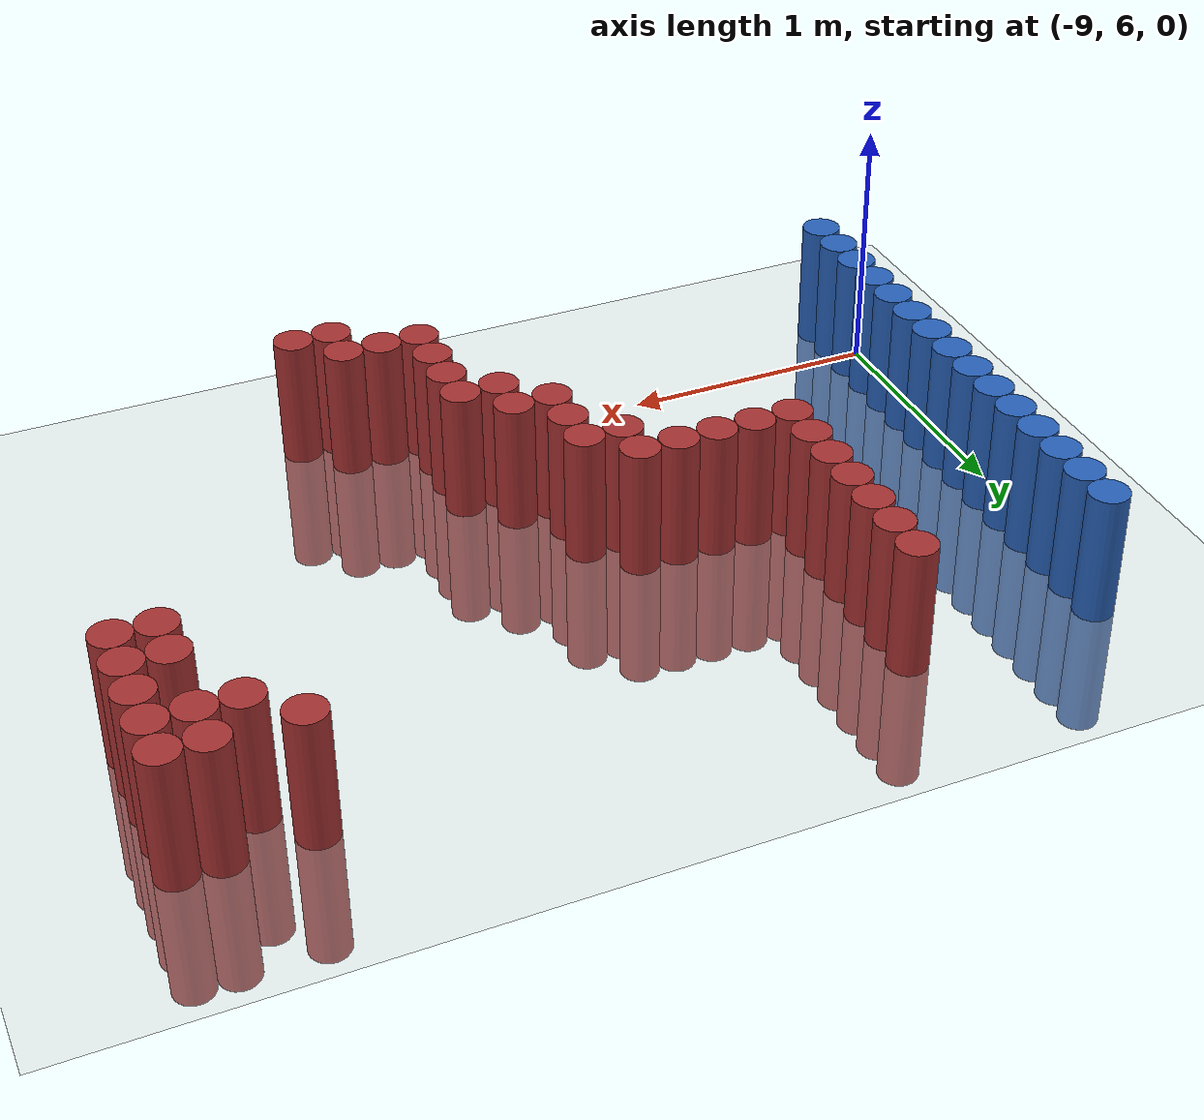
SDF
<sdf version="1.6">
 <world name="default">
  <model name="ground_plane">
   <static>1</static>
   <link name="link">
    <collision name="collision">
     <geometry><plane><normal>0 0 1</normal><size>100 100</size></plane></geometry>
     <surface><friction><ode><mu>100</mu><mu2>50</mu2></ode></friction></surface>
    </collision>
    <visual name="visual">
     <cast_shadows>0</cast_shadows>
     <geometry><plane><normal>0 0 1</normal><size>100 100</size></plane></geometry>
     <material>
      <script><uri>file://media/materials/scripts/gazebo.material</uri><name>Gazebo/Grey</name></script>
     </material>
    </visual>
   </link>
  </model>
  <model name="unit_cylinder_129">
   <static>1</static>
   <pose>-8.925000 5.775000 0.000000 0.000000 0.000000 0.000000</pose>
   <link name="link">
    <inertial>
     <mass>1</mass>
     <inertia><ixx>0.145833</ixx><ixy>0</ixy><ixz>0</ixz><iyy>0.145833</iyy><iyz>0</iyz><izz>0.125</izz></inertia>
    </inertial>
    <collision name="collision">
     <geometry><cylinder><radius>0.075000</radius><length>1</length></cylinder></geometry>
    </collision>
    <visual name="visual">
     <geometry><cylinder><radius>0.075000</radius><length>1</length></cylinder></geometry>
     <material>
      <ambient>0.152000 0.379000 0.720000 1</ambient>
      <diffuse>0.152000 0.379000 0.720000 1</diffuse>
     </material>
     <material>
      <script><name>Gazebo/Grey</name><uri>file://media/materials/scripts/gazebo.material</uri></script>
     </material>
    </visual>
   </link>
  </model>
  <model name="unit_cylinder_130">
   <static>1</static>
   <pose>-8.925000 5.925000 0.000000 0.000000 0.000000 0.000000</pose>
   <link name="link">
    <inertial>
     <mass>1</mass>
     <inertia><ixx>0.145833</ixx><ixy>0</ixy><ixz>0</ixz><iyy>0.145833</iyy><iyz>0</iyz><izz>0.125</izz></inertia>
    </inertial>
    <collision name="collision">
     <geometry><cylinder><radius>0.075000</radius><length>1</length></cylinder></geometry>
    </collision>
    <visual name="visual">
     <geometry><cylinder><radius>0.075000</radius><length>1</length></cylinder></geometry>
     <material>
      <ambient>0.152000 0.379000 0.720000 1</ambient>
      <diffuse>0.152000 0.379000 0.720000 1</diffuse>
     </material>
     <material>
      <script><name>Gazebo/Grey</name><uri>file://media/materials/scripts/gazebo.material</uri></script>
     </material>
    </visual>
   </link>
  </model>
  <model name="unit_cylinder_131">
   <static>1</static>
   <pose>-8.925000 6.075000 0.000000 0.000000 0.000000 0.000000</pose>
   <link name="link">
    <inertial>
     <mass>1</mass>
     <inertia><ixx>0.145833</ixx><ixy>0</ixy><ixz>0</ixz><iyy>0.145833</iyy><iyz>0</iyz><izz>0.125</izz></inertia>
    </inertial>
    <collision name="collision">
     <geometry><cylinder><radius>0.075000</radius><length>1</length></cylinder></geometry>
    </collision>
    <visual name="visual">
     <geometry><cylinder><radius>0.075000</radius><length>1</length></cylinder></geometry>
     <material>
      <ambient>0.152000 0.379000 0.720000 1</ambient>
      <diffuse>0.152000 0.379000 0.720000 1</diffuse>
     </material>
     <material>
      <script><name>Gazebo/Grey</name><uri>file://media/materials/scripts/gazebo.material</uri></script>
     </material>
    </visual>
   </link>
  </model>
  <model name="unit_cylinder_132">
   <static>1</static>
   <pose>-8.925000 6.225000 0.000000 0.000000 0.000000 0.000000</pose>
   <link name="link">
    <inertial>
     <mass>1</mass>
     <inertia><ixx>0.145833</ixx><ixy>0</ixy><ixz>0</ixz><iyy>0.145833</iyy><iyz>0</iyz><izz>0.125</izz></inertia>
    </inertial>
    <collision name="collision">
     <geometry><cylinder><radius>0.075000</radius><length>1</length></cylinder></geometry>
    </collision>
    <visual name="visual">
     <geometry><cylinder><radius>0.075000</radius><length>1</length></cylinder></geometry>
     <material>
      <ambient>0.152000 0.379000 0.720000 1</ambient>
      <diffuse>0.152000 0.379000 0.720000 1</diffuse>
     </material>
     <material>
      <script><name>Gazebo/Grey</name><uri>file://media/materials/scripts/gazebo.material</uri></script>
     </material>
    </visual>
   </link>
  </model>
  <model name="unit_cylinder_133">
   <static>1</static>
   <pose>-8.925000 6.375000 0.000000 0.000000 0.000000 0.000000</pose>
   <link name="link">
    <inertial>
     <mass>1</mass>
     <inertia><ixx>0.145833</ixx><ixy>0</ixy><ixz>0</ixz><iyy>0.145833</iyy><iyz>0</iyz><izz>0.125</izz></inertia>
    </inertial>
    <collision name="collision">
     <geometry><cylinder><radius>0.075000</radius><length>1</length></cylinder></geometry>
    </collision>
    <visual name="visual">
     <geometry><cylinder><radius>0.075000</radius><length>1</length></cylinder></geometry>
     <material>
      <ambient>0.152000 0.379000 0.720000 1</ambient>
      <diffuse>0.152000 0.379000 0.720000 1</diffuse>
     </material>
     <material>
      <script><name>Gazebo/Grey</name><uri>file://media/materials/scripts/gazebo.material</uri></script>
     </material>
    </visual>
   </link>
  </model>
  <model name="unit_cylinder_134">
   <static>1</static>
   <pose>-8.925000 6.525000 0.000000 0.000000 0.000000 0.000000</pose>
   <link name="link">
    <inertial>
     <mass>1</mass>
     <inertia><ixx>0.145833</ixx><ixy>0</ixy><ixz>0</ixz><iyy>0.145833</iyy><iyz>0</iyz><izz>0.125</izz></inertia>
    </inertial>
    <collision name="collision">
     <geometry><cylinder><radius>0.075000</radius><length>1</length></cylinder></geometry>
    </collision>
    <visual name="visual">
     <geometry><cylinder><radius>0.075000</radius><length>1</length></cylinder></geometry>
     <material>
      <ambient>0.152000 0.379000 0.720000 1</ambient>
      <diffuse>0.152000 0.379000 0.720000 1</diffuse>
     </material>
     <material>
      <script><name>Gazebo/Grey</name><uri>file://media/materials/scripts/gazebo.material</uri></script>
     </material>
    </visual>
   </link>
  </model>
  <model name="unit_cylinder_135">
   <static>1</static>
   <pose>-8.925000 6.675000 0.000000 0.000000 0.000000 0.000000</pose>
   <link name="link">
    <inertial>
     <mass>1</mass>
     <inertia><ixx>0.145833</ixx><ixy>0</ixy><ixz>0</ixz><iyy>0.145833</iyy><iyz>0</iyz><izz>0.125</izz></inertia>
    </inertial>
    <collision name="collision">
     <geometry><cylinder><radius>0.075000</radius><length>1</length></cylinder></geometry>
    </collision>
    <visual name="visual">
     <geometry><cylinder><radius>0.075000</radius><length>1</length></cylinder></geometry>
     <material>
      <ambient>0.152000 0.379000 0.720000 1</ambient>
      <diffuse>0.152000 0.379000 0.720000 1</diffuse>
     </material>
     <material>
      <script><name>Gazebo/Grey</name><uri>file://media/materials/scripts/gazebo.material</uri></script>
     </material>
    </visual>
   </link>
  </model>
  <model name="unit_cylinder_136">
   <static>1</static>
   <pose>-8.925000 6.825000 0.000000 0.000000 0.000000 0.000000</pose>
   <link name="link">
    <inertial>
     <mass>1</mass>
     <inertia><ixx>0.145833</ixx><ixy>0</ixy><ixz>0</ixz><iyy>0.145833</iyy><iyz>0</iyz><izz>0.125</izz></inertia>
    </inertial>
    <collision name="collision">
     <geometry><cylinder><radius>0.075000</radius><length>1</length></cylinder></geometry>
    </collision>
    <visual name="visual">
     <geometry><cylinder><radius>0.075000</radius><length>1</length></cylinder></geometry>
     <material>
      <ambient>0.152000 0.379000 0.720000 1</ambient>
      <diffuse>0.152000 0.379000 0.720000 1</diffuse>
     </material>
     <material>
      <script><name>Gazebo/Grey</name><uri>file://media/materials/scripts/gazebo.material</uri></script>
     </material>
    </visual>
   </link>
  </model>
  <model name="unit_cylinder_137">
   <static>1</static>
   <pose>-8.925000 6.975000 0.000000 0.000000 0.000000 0.000000</pose>
   <link name="link">
    <inertial>
     <mass>1</mass>
     <inertia><ixx>0.145833</ixx><ixy>0</ixy><ixz>0</ixz><iyy>0.145833</iyy><iyz>0</iyz><izz>0.125</izz></inertia>
    </inertial>
    <collision name="collision">
     <geometry><cylinder><radius>0.075000</radius><length>1</length></cylinder></geometry>
    </collision>
    <visual name="visual">
     <geometry><cylinder><radius>0.075000</radius><length>1</length></cylinder></geometry>
     <material>
      <ambient>0.152000 0.379000 0.720000 1</ambient>
      <diffuse>0.152000 0.379000 0.720000 1</diffuse>
     </material>
     <material>
      <script><name>Gazebo/Grey</name><uri>file://media/materials/scripts/gazebo.material</uri></script>
     </material>
    </visual>
   </link>
  </model>
  <model name="unit_cylinder_138">
   <static>1</static>
   <pose>-8.925000 7.125000 0.000000 0.000000 0.000000 0.000000</pose>
   <link name="link">
    <inertial>
     <mass>1</mass>
     <inertia><ixx>0.145833</ixx><ixy>0</ixy><ixz>0</ixz><iyy>0.145833</iyy><iyz>0</iyz><izz>0.125</izz></inertia>
    </inertial>
    <collision name="collision">
     <geometry><cylinder><radius>0.075000</radius><length>1</length></cylinder></geometry>
    </collision>
    <visual name="visual">
     <geometry><cylinder><radius>0.075000</radius><length>1</length></cylinder></geometry>
     <material>
      <ambient>0.152000 0.379000 0.720000 1</ambient>
      <diffuse>0.152000 0.379000 0.720000 1</diffuse>
     </material>
     <material>
      <script><name>Gazebo/Grey</name><uri>file://media/materials/scripts/gazebo.material</uri></script>
     </material>
    </visual>
   </link>
  </model>
  <model name="unit_cylinder_139">
   <static>1</static>
   <pose>-8.925000 7.275000 0.000000 0.000000 0.000000 0.000000</pose>
   <link name="link">
    <inertial>
     <mass>1</mass>
     <inertia><ixx>0.145833</ixx><ixy>0</ixy><ixz>0</ixz><iyy>0.145833</iyy><iyz>0</iyz><izz>0.125</izz></inertia>
    </inertial>
    <collision name="collision">
     <geometry><cylinder><radius>0.075000</radius><length>1</length></cylinder></geometry>
    </collision>
    <visual name="visual">
     <geometry><cylinder><radius>0.075000</radius><length>1</length></cylinder></geometry>
     <material>
      <ambient>0.152000 0.379000 0.720000 1</ambient>
      <diffuse>0.152000 0.379000 0.720000 1</diffuse>
     </material>
     <material>
      <script><name>Gazebo/Grey</name><uri>file://media/materials/scripts/gazebo.material</uri></script>
     </material>
    </visual>
   </link>
  </model>
  <model name="unit_cylinder_140">
   <static>1</static>
   <pose>-8.925000 7.425000 0.000000 0.000000 0.000000 0.000000</pose>
   <link name="link">
    <inertial>
     <mass>1</mass>
     <inertia><ixx>0.145833</ixx><ixy>0</ixy><ixz>0</ixz><iyy>0.145833</iyy><iyz>0</iyz><izz>0.125</izz></inertia>
    </inertial>
    <collision name="collision">
     <geometry><cylinder><radius>0.075000</radius><length>1</length></cylinder></geometry>
    </collision>
    <visual name="visual">
     <geometry><cylinder><radius>0.075000</radius><length>1</length></cylinder></geometry>
     <material>
      <ambient>0.152000 0.379000 0.720000 1</ambient>
      <diffuse>0.152000 0.379000 0.720000 1</diffuse>
     </material>
     <material>
      <script><name>Gazebo/Grey</name><uri>file://media/materials/scripts/gazebo.material</uri></script>
     </material>
    </visual>
   </link>
  </model>
  <model name="unit_cylinder_141">
   <static>1</static>
   <pose>-8.925000 7.575000 0.000000 0.000000 0.000000 0.000000</pose>
   <link name="link">
    <inertial>
     <mass>1</mass>
     <inertia><ixx>0.145833</ixx><ixy>0</ixy><ixz>0</ixz><iyy>0.145833</iyy><iyz>0</iyz><izz>0.125</izz></inertia>
    </inertial>
    <collision name="collision">
     <geometry><cylinder><radius>0.075000</radius><length>1</length></cylinder></geometry>
    </collision>
    <visual name="visual">
     <geometry><cylinder><radius>0.075000</radius><length>1</length></cylinder></geometry>
     <material>
      <ambient>0.152000 0.379000 0.720000 1</ambient>
      <diffuse>0.152000 0.379000 0.720000 1</diffuse>
     </material>
     <material>
      <script><name>Gazebo/Grey</name><uri>file://media/materials/scripts/gazebo.material</uri></script>
     </material>
    </visual>
   </link>
  </model>
  <model name="unit_cylinder_142">
   <static>1</static>
   <pose>-8.925000 7.725000 0.000000 0.000000 0.000000 0.000000</pose>
   <link name="link">
    <inertial>
     <mass>1</mass>
     <inertia><ixx>0.145833</ixx><ixy>0</ixy><ixz>0</ixz><iyy>0.145833</iyy><iyz>0</iyz><izz>0.125</izz></inertia>
    </inertial>
    <collision name="collision">
     <geometry><cylinder><radius>0.075000</radius><length>1</length></cylinder></geometry>
    </collision>
    <visual name="visual">
     <geometry><cylinder><radius>0.075000</radius><length>1</length></cylinder></geometry>
     <material>
      <ambient>0.152000 0.379000 0.720000 1</ambient>
      <diffuse>0.152000 0.379000 0.720000 1</diffuse>
     </material>
     <material>
      <script><name>Gazebo/Grey</name><uri>file://media/materials/scripts/gazebo.material</uri></script>
     </material>
    </visual>
   </link>
  </model>
  <model name="unit_cylinder_143">
   <static>1</static>
   <pose>-8.925000 7.875000 0.000000 0.000000 0.000000 0.000000</pose>
   <link name="link">
    <inertial>
     <mass>1</mass>
     <inertia><ixx>0.145833</ixx><ixy>0</ixy><ixz>0</ixz><iyy>0.145833</iyy><iyz>0</iyz><izz>0.125</izz></inertia>
    </inertial>
    <collision name="collision">
     <geometry><cylinder><radius>0.075000</radius><length>1</length></cylinder></geometry>
    </collision>
    <visual name="visual">
     <geometry><cylinder><radius>0.075000</radius><length>1</length></cylinder></geometry>
     <material>
      <ambient>0.152000 0.379000 0.720000 1</ambient>
      <diffuse>0.152000 0.379000 0.720000 1</diffuse>
     </material>
     <material>
      <script><name>Gazebo/Grey</name><uri>file://media/materials/scripts/gazebo.material</uri></script>
     </material>
    </visual>
   </link>
  </model>
  <model name="unit_cylinder_164">
   <static>1</static>
   <pose>-8.175000 6.975000 0.000000 0.000000 0.000000 0.000000</pose>
   <link name="link">
    <inertial>
     <mass>1</mass>
     <inertia><ixx>0.145833</ixx><ixy>0</ixy><ixz>0</ixz><iyy>0.145833</iyy><iyz>0</iyz><izz>0.125</izz></inertia>
    </inertial>
    <collision name="collision">
     <geometry><cylinder><radius>0.075000</radius><length>1</length></cylinder></geometry>
    </collision>
    <visual name="visual">
     <geometry><cylinder><radius>0.075000</radius><length>1</length></cylinder></geometry>
     <material>
      <ambient>0.648000 0.192000 0.192000 1</ambient>
      <diffuse>0.648000 0.192000 0.192000 1</diffuse>
     </material>
     <material>
      <script><name>Gazebo/Grey</name><uri>file://media/materials/scripts/gazebo.material</uri></script>
     </material>
    </visual>
   </link>
  </model>
  <model name="unit_cylinder_165">
   <static>1</static>
   <pose>-8.175000 7.125000 0.000000 0.000000 0.000000 0.000000</pose>
   <link name="link">
    <inertial>
     <mass>1</mass>
     <inertia><ixx>0.145833</ixx><ixy>0</ixy><ixz>0</ixz><iyy>0.145833</iyy><iyz>0</iyz><izz>0.125</izz></inertia>
    </inertial>
    <collision name="collision">
     <geometry><cylinder><radius>0.075000</radius><length>1</length></cylinder></geometry>
    </collision>
    <visual name="visual">
     <geometry><cylinder><radius>0.075000</radius><length>1</length></cylinder></geometry>
     <material>
      <ambient>0.648000 0.192000 0.192000 1</ambient>
      <diffuse>0.648000 0.192000 0.192000 1</diffuse>
     </material>
     <material>
      <script><name>Gazebo/Grey</name><uri>file://media/materials/scripts/gazebo.material</uri></script>
     </material>
    </visual>
   </link>
  </model>
  <model name="unit_cylinder_166">
   <static>1</static>
   <pose>-8.175000 7.275000 0.000000 0.000000 0.000000 0.000000</pose>
   <link name="link">
    <inertial>
     <mass>1</mass>
     <inertia><ixx>0.145833</ixx><ixy>0</ixy><ixz>0</ixz><iyy>0.145833</iyy><iyz>0</iyz><izz>0.125</izz></inertia>
    </inertial>
    <collision name="collision">
     <geometry><cylinder><radius>0.075000</radius><length>1</length></cylinder></geometry>
    </collision>
    <visual name="visual">
     <geometry><cylinder><radius>0.075000</radius><length>1</length></cylinder></geometry>
     <material>
      <ambient>0.648000 0.192000 0.192000 1</ambient>
      <diffuse>0.648000 0.192000 0.192000 1</diffuse>
     </material>
     <material>
      <script><name>Gazebo/Grey</name><uri>file://media/materials/scripts/gazebo.material</uri></script>
     </material>
    </visual>
   </link>
  </model>
  <model name="unit_cylinder_167">
   <static>1</static>
   <pose>-8.175000 7.425000 0.000000 0.000000 0.000000 0.000000</pose>
   <link name="link">
    <inertial>
     <mass>1</mass>
     <inertia><ixx>0.145833</ixx><ixy>0</ixy><ixz>0</ixz><iyy>0.145833</iyy><iyz>0</iyz><izz>0.125</izz></inertia>
    </inertial>
    <collision name="collision">
     <geometry><cylinder><radius>0.075000</radius><length>1</length></cylinder></geometry>
    </collision>
    <visual name="visual">
     <geometry><cylinder><radius>0.075000</radius><length>1</length></cylinder></geometry>
     <material>
      <ambient>0.648000 0.192000 0.192000 1</ambient>
      <diffuse>0.648000 0.192000 0.192000 1</diffuse>
     </material>
     <material>
      <script><name>Gazebo/Grey</name><uri>file://media/materials/scripts/gazebo.material</uri></script>
     </material>
    </visual>
   </link>
  </model>
  <model name="unit_cylinder_168">
   <static>1</static>
   <pose>-8.175000 7.575000 0.000000 0.000000 0.000000 0.000000</pose>
   <link name="link">
    <inertial>
     <mass>1</mass>
     <inertia><ixx>0.145833</ixx><ixy>0</ixy><ixz>0</ixz><iyy>0.145833</iyy><iyz>0</iyz><izz>0.125</izz></inertia>
    </inertial>
    <collision name="collision">
     <geometry><cylinder><radius>0.075000</radius><length>1</length></cylinder></geometry>
    </collision>
    <visual name="visual">
     <geometry><cylinder><radius>0.075000</radius><length>1</length></cylinder></geometry>
     <material>
      <ambient>0.648000 0.192000 0.192000 1</ambient>
      <diffuse>0.648000 0.192000 0.192000 1</diffuse>
     </material>
     <material>
      <script><name>Gazebo/Grey</name><uri>file://media/materials/scripts/gazebo.material</uri></script>
     </material>
    </visual>
   </link>
  </model>
  <model name="unit_cylinder_169">
   <static>1</static>
   <pose>-8.175000 7.725000 0.000000 0.000000 0.000000 0.000000</pose>
   <link name="link">
    <inertial>
     <mass>1</mass>
     <inertia><ixx>0.145833</ixx><ixy>0</ixy><ixz>0</ixz><iyy>0.145833</iyy><iyz>0</iyz><izz>0.125</izz></inertia>
    </inertial>
    <collision name="collision">
     <geometry><cylinder><radius>0.075000</radius><length>1</length></cylinder></geometry>
    </collision>
    <visual name="visual">
     <geometry><cylinder><radius>0.075000</radius><length>1</length></cylinder></geometry>
     <material>
      <ambient>0.648000 0.192000 0.192000 1</ambient>
      <diffuse>0.648000 0.192000 0.192000 1</diffuse>
     </material>
     <material>
      <script><name>Gazebo/Grey</name><uri>file://media/materials/scripts/gazebo.material</uri></script>
     </material>
    </visual>
   </link>
  </model>
  <model name="unit_cylinder_170">
   <static>1</static>
   <pose>-8.175000 7.875000 0.000000 0.000000 0.000000 0.000000</pose>
   <link name="link">
    <inertial>
     <mass>1</mass>
     <inertia><ixx>0.145833</ixx><ixy>0</ixy><ixz>0</ixz><iyy>0.145833</iyy><iyz>0</iyz><izz>0.125</izz></inertia>
    </inertial>
    <collision name="collision">
     <geometry><cylinder><radius>0.075000</radius><length>1</length></cylinder></geometry>
    </collision>
    <visual name="visual">
     <geometry><cylinder><radius>0.075000</radius><length>1</length></cylinder></geometry>
     <material>
      <ambient>0.648000 0.192000 0.192000 1</ambient>
      <diffuse>0.648000 0.192000 0.192000 1</diffuse>
     </material>
     <material>
      <script><name>Gazebo/Grey</name><uri>file://media/materials/scripts/gazebo.material</uri></script>
     </material>
    </visual>
   </link>
  </model>
  <model name="unit_cylinder_183">
   <static>1</static>
   <pose>-8.025000 6.975000 0.000000 0.000000 0.000000 0.000000</pose>
   <link name="link">
    <inertial>
     <mass>1</mass>
     <inertia><ixx>0.145833</ixx><ixy>0</ixy><ixz>0</ixz><iyy>0.145833</iyy><iyz>0</iyz><izz>0.125</izz></inertia>
    </inertial>
    <collision name="collision">
     <geometry><cylinder><radius>0.075000</radius><length>1</length></cylinder></geometry>
    </collision>
    <visual name="visual">
     <geometry><cylinder><radius>0.075000</radius><length>1</length></cylinder></geometry>
     <material>
      <ambient>0.648000 0.192000 0.192000 1</ambient>
      <diffuse>0.648000 0.192000 0.192000 1</diffuse>
     </material>
     <material>
      <script><name>Gazebo/Grey</name><uri>file://media/materials/scripts/gazebo.material</uri></script>
     </material>
    </visual>
   </link>
  </model>
  <model name="unit_cylinder_185">
   <static>1</static>
   <pose>-7.875000 6.975000 0.000000 0.000000 0.000000 0.000000</pose>
   <link name="link">
    <inertial>
     <mass>1</mass>
     <inertia><ixx>0.145833</ixx><ixy>0</ixy><ixz>0</ixz><iyy>0.145833</iyy><iyz>0</iyz><izz>0.125</izz></inertia>
    </inertial>
    <collision name="collision">
     <geometry><cylinder><radius>0.075000</radius><length>1</length></cylinder></geometry>
    </collision>
    <visual name="visual">
     <geometry><cylinder><radius>0.075000</radius><length>1</length></cylinder></geometry>
     <material>
      <ambient>0.648000 0.192000 0.192000 1</ambient>
      <diffuse>0.648000 0.192000 0.192000 1</diffuse>
     </material>
     <material>
      <script><name>Gazebo/Grey</name><uri>file://media/materials/scripts/gazebo.material</uri></script>
     </material>
    </visual>
   </link>
  </model>
  <model name="unit_cylinder_187">
   <static>1</static>
   <pose>-7.725000 6.975000 0.000000 0.000000 0.000000 0.000000</pose>
   <link name="link">
    <inertial>
     <mass>1</mass>
     <inertia><ixx>0.145833</ixx><ixy>0</ixy><ixz>0</ixz><iyy>0.145833</iyy><iyz>0</iyz><izz>0.125</izz></inertia>
    </inertial>
    <collision name="collision">
     <geometry><cylinder><radius>0.075000</radius><length>1</length></cylinder></geometry>
    </collision>
    <visual name="visual">
     <geometry><cylinder><radius>0.075000</radius><length>1</length></cylinder></geometry>
     <material>
      <ambient>0.648000 0.192000 0.192000 1</ambient>
      <diffuse>0.648000 0.192000 0.192000 1</diffuse>
     </material>
     <material>
      <script><name>Gazebo/Grey</name><uri>file://media/materials/scripts/gazebo.material</uri></script>
     </material>
    </visual>
   </link>
  </model>
  <model name="unit_cylinder_189">
   <static>1</static>
   <pose>-7.575000 6.825000 0.000000 0.000000 0.000000 0.000000</pose>
   <link name="link">
    <inertial>
     <mass>1</mass>
     <inertia><ixx>0.145833</ixx><ixy>0</ixy><ixz>0</ixz><iyy>0.145833</iyy><iyz>0</iyz><izz>0.125</izz></inertia>
    </inertial>
    <collision name="collision">
     <geometry><cylinder><radius>0.075000</radius><length>1</length></cylinder></geometry>
    </collision>
    <visual name="visual">
     <geometry><cylinder><radius>0.075000</radius><length>1</length></cylinder></geometry>
     <material>
      <ambient>0.648000 0.192000 0.192000 1</ambient>
      <diffuse>0.648000 0.192000 0.192000 1</diffuse>
     </material>
     <material>
      <script><name>Gazebo/Grey</name><uri>file://media/materials/scripts/gazebo.material</uri></script>
     </material>
    </visual>
   </link>
  </model>
  <model name="unit_cylinder_190">
   <static>1</static>
   <pose>-7.575000 6.975000 0.000000 0.000000 0.000000 0.000000</pose>
   <link name="link">
    <inertial>
     <mass>1</mass>
     <inertia><ixx>0.145833</ixx><ixy>0</ixy><ixz>0</ixz><iyy>0.145833</iyy><iyz>0</iyz><izz>0.125</izz></inertia>
    </inertial>
    <collision name="collision">
     <geometry><cylinder><radius>0.075000</radius><length>1</length></cylinder></geometry>
    </collision>
    <visual name="visual">
     <geometry><cylinder><radius>0.075000</radius><length>1</length></cylinder></geometry>
     <material>
      <ambient>0.648000 0.192000 0.192000 1</ambient>
      <diffuse>0.648000 0.192000 0.192000 1</diffuse>
     </material>
     <material>
      <script><name>Gazebo/Grey</name><uri>file://media/materials/scripts/gazebo.material</uri></script>
     </material>
    </visual>
   </link>
  </model>
  <model name="unit_cylinder_192">
   <static>1</static>
   <pose>-7.425000 6.525000 0.000000 0.000000 0.000000 0.000000</pose>
   <link name="link">
    <inertial>
     <mass>1</mass>
     <inertia><ixx>0.145833</ixx><ixy>0</ixy><ixz>0</ixz><iyy>0.145833</iyy><iyz>0</iyz><izz>0.125</izz></inertia>
    </inertial>
    <collision name="collision">
     <geometry><cylinder><radius>0.075000</radius><length>1</length></cylinder></geometry>
    </collision>
    <visual name="visual">
     <geometry><cylinder><radius>0.075000</radius><length>1</length></cylinder></geometry>
     <material>
      <ambient>0.648000 0.192000 0.192000 1</ambient>
      <diffuse>0.648000 0.192000 0.192000 1</diffuse>
     </material>
     <material>
      <script><name>Gazebo/Grey</name><uri>file://media/materials/scripts/gazebo.material</uri></script>
     </material>
    </visual>
   </link>
  </model>
  <model name="unit_cylinder_193">
   <static>1</static>
   <pose>-7.425000 6.675000 0.000000 0.000000 0.000000 0.000000</pose>
   <link name="link">
    <inertial>
     <mass>1</mass>
     <inertia><ixx>0.145833</ixx><ixy>0</ixy><ixz>0</ixz><iyy>0.145833</iyy><iyz>0</iyz><izz>0.125</izz></inertia>
    </inertial>
    <collision name="collision">
     <geometry><cylinder><radius>0.075000</radius><length>1</length></cylinder></geometry>
    </collision>
    <visual name="visual">
     <geometry><cylinder><radius>0.075000</radius><length>1</length></cylinder></geometry>
     <material>
      <ambient>0.648000 0.192000 0.192000 1</ambient>
      <diffuse>0.648000 0.192000 0.192000 1</diffuse>
     </material>
     <material>
      <script><name>Gazebo/Grey</name><uri>file://media/materials/scripts/gazebo.material</uri></script>
     </material>
    </visual>
   </link>
  </model>
  <model name="unit_cylinder_194">
   <static>1</static>
   <pose>-7.425000 6.825000 0.000000 0.000000 0.000000 0.000000</pose>
   <link name="link">
    <inertial>
     <mass>1</mass>
     <inertia><ixx>0.145833</ixx><ixy>0</ixy><ixz>0</ixz><iyy>0.145833</iyy><iyz>0</iyz><izz>0.125</izz></inertia>
    </inertial>
    <collision name="collision">
     <geometry><cylinder><radius>0.075000</radius><length>1</length></cylinder></geometry>
    </collision>
    <visual name="visual">
     <geometry><cylinder><radius>0.075000</radius><length>1</length></cylinder></geometry>
     <material>
      <ambient>0.648000 0.192000 0.192000 1</ambient>
      <diffuse>0.648000 0.192000 0.192000 1</diffuse>
     </material>
     <material>
      <script><name>Gazebo/Grey</name><uri>file://media/materials/scripts/gazebo.material</uri></script>
     </material>
    </visual>
   </link>
  </model>
  <model name="unit_cylinder_196">
   <static>1</static>
   <pose>-7.275000 6.375000 0.000000 0.000000 0.000000 0.000000</pose>
   <link name="link">
    <inertial>
     <mass>1</mass>
     <inertia><ixx>0.145833</ixx><ixy>0</ixy><ixz>0</ixz><iyy>0.145833</iyy><iyz>0</iyz><izz>0.125</izz></inertia>
    </inertial>
    <collision name="collision">
     <geometry><cylinder><radius>0.075000</radius><length>1</length></cylinder></geometry>
    </collision>
    <visual name="visual">
     <geometry><cylinder><radius>0.075000</radius><length>1</length></cylinder></geometry>
     <material>
      <ambient>0.648000 0.192000 0.192000 1</ambient>
      <diffuse>0.648000 0.192000 0.192000 1</diffuse>
     </material>
     <material>
      <script><name>Gazebo/Grey</name><uri>file://media/materials/scripts/gazebo.material</uri></script>
     </material>
    </visual>
   </link>
  </model>
  <model name="unit_cylinder_197">
   <static>1</static>
   <pose>-7.275000 6.525000 0.000000 0.000000 0.000000 0.000000</pose>
   <link name="link">
    <inertial>
     <mass>1</mass>
     <inertia><ixx>0.145833</ixx><ixy>0</ixy><ixz>0</ixz><iyy>0.145833</iyy><iyz>0</iyz><izz>0.125</izz></inertia>
    </inertial>
    <collision name="collision">
     <geometry><cylinder><radius>0.075000</radius><length>1</length></cylinder></geometry>
    </collision>
    <visual name="visual">
     <geometry><cylinder><radius>0.075000</radius><length>1</length></cylinder></geometry>
     <material>
      <ambient>0.648000 0.192000 0.192000 1</ambient>
      <diffuse>0.648000 0.192000 0.192000 1</diffuse>
     </material>
     <material>
      <script><name>Gazebo/Grey</name><uri>file://media/materials/scripts/gazebo.material</uri></script>
     </material>
    </visual>
   </link>
  </model>
  <model name="unit_cylinder_199">
   <static>1</static>
   <pose>-7.125000 5.925000 0.000000 0.000000 0.000000 0.000000</pose>
   <link name="link">
    <inertial>
     <mass>1</mass>
     <inertia><ixx>0.145833</ixx><ixy>0</ixy><ixz>0</ixz><iyy>0.145833</iyy><iyz>0</iyz><izz>0.125</izz></inertia>
    </inertial>
    <collision name="collision">
     <geometry><cylinder><radius>0.075000</radius><length>1</length></cylinder></geometry>
    </collision>
    <visual name="visual">
     <geometry><cylinder><radius>0.075000</radius><length>1</length></cylinder></geometry>
     <material>
      <ambient>0.648000 0.192000 0.192000 1</ambient>
      <diffuse>0.648000 0.192000 0.192000 1</diffuse>
     </material>
     <material>
      <script><name>Gazebo/Grey</name><uri>file://media/materials/scripts/gazebo.material</uri></script>
     </material>
    </visual>
   </link>
  </model>
  <model name="unit_cylinder_200">
   <static>1</static>
   <pose>-7.125000 6.075000 0.000000 0.000000 0.000000 0.000000</pose>
   <link name="link">
    <inertial>
     <mass>1</mass>
     <inertia><ixx>0.145833</ixx><ixy>0</ixy><ixz>0</ixz><iyy>0.145833</iyy><iyz>0</iyz><izz>0.125</izz></inertia>
    </inertial>
    <collision name="collision">
     <geometry><cylinder><radius>0.075000</radius><length>1</length></cylinder></geometry>
    </collision>
    <visual name="visual">
     <geometry><cylinder><radius>0.075000</radius><length>1</length></cylinder></geometry>
     <material>
      <ambient>0.648000 0.192000 0.192000 1</ambient>
      <diffuse>0.648000 0.192000 0.192000 1</diffuse>
     </material>
     <material>
      <script><name>Gazebo/Grey</name><uri>file://media/materials/scripts/gazebo.material</uri></script>
     </material>
    </visual>
   </link>
  </model>
  <model name="unit_cylinder_201">
   <static>1</static>
   <pose>-7.125000 6.225000 0.000000 0.000000 0.000000 0.000000</pose>
   <link name="link">
    <inertial>
     <mass>1</mass>
     <inertia><ixx>0.145833</ixx><ixy>0</ixy><ixz>0</ixz><iyy>0.145833</iyy><iyz>0</iyz><izz>0.125</izz></inertia>
    </inertial>
    <collision name="collision">
     <geometry><cylinder><radius>0.075000</radius><length>1</length></cylinder></geometry>
    </collision>
    <visual name="visual">
     <geometry><cylinder><radius>0.075000</radius><length>1</length></cylinder></geometry>
     <material>
      <ambient>0.648000 0.192000 0.192000 1</ambient>
      <diffuse>0.648000 0.192000 0.192000 1</diffuse>
     </material>
     <material>
      <script><name>Gazebo/Grey</name><uri>file://media/materials/scripts/gazebo.material</uri></script>
     </material>
    </visual>
   </link>
  </model>
  <model name="unit_cylinder_202">
   <static>1</static>
   <pose>-7.125000 6.375000 0.000000 0.000000 0.000000 0.000000</pose>
   <link name="link">
    <inertial>
     <mass>1</mass>
     <inertia><ixx>0.145833</ixx><ixy>0</ixy><ixz>0</ixz><iyy>0.145833</iyy><iyz>0</iyz><izz>0.125</izz></inertia>
    </inertial>
    <collision name="collision">
     <geometry><cylinder><radius>0.075000</radius><length>1</length></cylinder></geometry>
    </collision>
    <visual name="visual">
     <geometry><cylinder><radius>0.075000</radius><length>1</length></cylinder></geometry>
     <material>
      <ambient>0.648000 0.192000 0.192000 1</ambient>
      <diffuse>0.648000 0.192000 0.192000 1</diffuse>
     </material>
     <material>
      <script><name>Gazebo/Grey</name><uri>file://media/materials/scripts/gazebo.material</uri></script>
     </material>
    </visual>
   </link>
  </model>
  <model name="unit_cylinder_204">
   <static>1</static>
   <pose>-6.975000 5.925000 0.000000 0.000000 0.000000 0.000000</pose>
   <link name="link">
    <inertial>
     <mass>1</mass>
     <inertia><ixx>0.145833</ixx><ixy>0</ixy><ixz>0</ixz><iyy>0.145833</iyy><iyz>0</iyz><izz>0.125</izz></inertia>
    </inertial>
    <collision name="collision">
     <geometry><cylinder><radius>0.075000</radius><length>1</length></cylinder></geometry>
    </collision>
    <visual name="visual">
     <geometry><cylinder><radius>0.075000</radius><length>1</length></cylinder></geometry>
     <material>
      <ambient>0.648000 0.192000 0.192000 1</ambient>
      <diffuse>0.648000 0.192000 0.192000 1</diffuse>
     </material>
     <material>
      <script><name>Gazebo/Grey</name><uri>file://media/materials/scripts/gazebo.material</uri></script>
     </material>
    </visual>
   </link>
  </model>
  <model name="unit_cylinder_206">
   <static>1</static>
   <pose>-6.825000 5.775000 0.000000 0.000000 0.000000 0.000000</pose>
   <link name="link">
    <inertial>
     <mass>1</mass>
     <inertia><ixx>0.145833</ixx><ixy>0</ixy><ixz>0</ixz><iyy>0.145833</iyy><iyz>0</iyz><izz>0.125</izz></inertia>
    </inertial>
    <collision name="collision">
     <geometry><cylinder><radius>0.075000</radius><length>1</length></cylinder></geometry>
    </collision>
    <visual name="visual">
     <geometry><cylinder><radius>0.075000</radius><length>1</length></cylinder></geometry>
     <material>
      <ambient>0.648000 0.192000 0.192000 1</ambient>
      <diffuse>0.648000 0.192000 0.192000 1</diffuse>
     </material>
     <material>
      <script><name>Gazebo/Grey</name><uri>file://media/materials/scripts/gazebo.material</uri></script>
     </material>
    </visual>
   </link>
  </model>
  <model name="unit_cylinder_207">
   <static>1</static>
   <pose>-6.825000 5.925000 0.000000 0.000000 0.000000 0.000000</pose>
   <link name="link">
    <inertial>
     <mass>1</mass>
     <inertia><ixx>0.145833</ixx><ixy>0</ixy><ixz>0</ixz><iyy>0.145833</iyy><iyz>0</iyz><izz>0.125</izz></inertia>
    </inertial>
    <collision name="collision">
     <geometry><cylinder><radius>0.075000</radius><length>1</length></cylinder></geometry>
    </collision>
    <visual name="visual">
     <geometry><cylinder><radius>0.075000</radius><length>1</length></cylinder></geometry>
     <material>
      <ambient>0.648000 0.192000 0.192000 1</ambient>
      <diffuse>0.648000 0.192000 0.192000 1</diffuse>
     </material>
     <material>
      <script><name>Gazebo/Grey</name><uri>file://media/materials/scripts/gazebo.material</uri></script>
     </material>
    </visual>
   </link>
  </model>
  <model name="unit_cylinder_212">
   <static>1</static>
   <pose>-6.675000 5.775000 0.000000 0.000000 0.000000 0.000000</pose>
   <link name="link">
    <inertial>
     <mass>1</mass>
     <inertia><ixx>0.145833</ixx><ixy>0</ixy><ixz>0</ixz><iyy>0.145833</iyy><iyz>0</iyz><izz>0.125</izz></inertia>
    </inertial>
    <collision name="collision">
     <geometry><cylinder><radius>0.075000</radius><length>1</length></cylinder></geometry>
    </collision>
    <visual name="visual">
     <geometry><cylinder><radius>0.075000</radius><length>1</length></cylinder></geometry>
     <material>
      <ambient>0.648000 0.192000 0.192000 1</ambient>
      <diffuse>0.648000 0.192000 0.192000 1</diffuse>
     </material>
     <material>
      <script><name>Gazebo/Grey</name><uri>file://media/materials/scripts/gazebo.material</uri></script>
     </material>
    </visual>
   </link>
  </model>
  <model name="unit_cylinder_228">
   <static>1</static>
   <pose>-6.075000 7.875000 0.000000 0.000000 0.000000 0.000000</pose>
   <link name="link">
    <inertial>
     <mass>1</mass>
     <inertia><ixx>0.145833</ixx><ixy>0</ixy><ixz>0</ixz><iyy>0.145833</iyy><iyz>0</iyz><izz>0.125</izz></inertia>
    </inertial>
    <collision name="collision">
     <geometry><cylinder><radius>0.075000</radius><length>1</length></cylinder></geometry>
    </collision>
    <visual name="visual">
     <geometry><cylinder><radius>0.075000</radius><length>1</length></cylinder></geometry>
     <material>
      <ambient>0.648000 0.192000 0.192000 1</ambient>
      <diffuse>0.648000 0.192000 0.192000 1</diffuse>
     </material>
     <material>
      <script><name>Gazebo/Grey</name><uri>file://media/materials/scripts/gazebo.material</uri></script>
     </material>
    </visual>
   </link>
  </model>
  <model name="unit_cylinder_238">
   <static>1</static>
   <pose>-5.925000 7.725000 0.000000 0.000000 0.000000 0.000000</pose>
   <link name="link">
    <inertial>
     <mass>1</mass>
     <inertia><ixx>0.145833</ixx><ixy>0</ixy><ixz>0</ixz><iyy>0.145833</iyy><iyz>0</iyz><izz>0.125</izz></inertia>
    </inertial>
    <collision name="collision">
     <geometry><cylinder><radius>0.075000</radius><length>1</length></cylinder></geometry>
    </collision>
    <visual name="visual">
     <geometry><cylinder><radius>0.075000</radius><length>1</length></cylinder></geometry>
     <material>
      <ambient>0.648000 0.192000 0.192000 1</ambient>
      <diffuse>0.648000 0.192000 0.192000 1</diffuse>
     </material>
     <material>
      <script><name>Gazebo/Grey</name><uri>file://media/materials/scripts/gazebo.material</uri></script>
     </material>
    </visual>
   </link>
  </model>
  <model name="unit_cylinder_245">
   <static>1</static>
   <pose>-5.775000 7.275000 0.000000 0.000000 0.000000 0.000000</pose>
   <link name="link">
    <inertial>
     <mass>1</mass>
     <inertia><ixx>0.145833</ixx><ixy>0</ixy><ixz>0</ixz><iyy>0.145833</iyy><iyz>0</iyz><izz>0.125</izz></inertia>
    </inertial>
    <collision name="collision">
     <geometry><cylinder><radius>0.075000</radius><length>1</length></cylinder></geometry>
    </collision>
    <visual name="visual">
     <geometry><cylinder><radius>0.075000</radius><length>1</length></cylinder></geometry>
     <material>
      <ambient>0.648000 0.192000 0.192000 1</ambient>
      <diffuse>0.648000 0.192000 0.192000 1</diffuse>
     </material>
     <material>
      <script><name>Gazebo/Grey</name><uri>file://media/materials/scripts/gazebo.material</uri></script>
     </material>
    </visual>
   </link>
  </model>
  <model name="unit_cylinder_246">
   <static>1</static>
   <pose>-5.775000 7.425000 0.000000 0.000000 0.000000 0.000000</pose>
   <link name="link">
    <inertial>
     <mass>1</mass>
     <inertia><ixx>0.145833</ixx><ixy>0</ixy><ixz>0</ixz><iyy>0.145833</iyy><iyz>0</iyz><izz>0.125</izz></inertia>
    </inertial>
    <collision name="collision">
     <geometry><cylinder><radius>0.075000</radius><length>1</length></cylinder></geometry>
    </collision>
    <visual name="visual">
     <geometry><cylinder><radius>0.075000</radius><length>1</length></cylinder></geometry>
     <material>
      <ambient>0.648000 0.192000 0.192000 1</ambient>
      <diffuse>0.648000 0.192000 0.192000 1</diffuse>
     </material>
     <material>
      <script><name>Gazebo/Grey</name><uri>file://media/materials/scripts/gazebo.material</uri></script>
     </material>
    </visual>
   </link>
  </model>
  <model name="unit_cylinder_247">
   <static>1</static>
   <pose>-5.775000 7.725000 0.000000 0.000000 0.000000 0.000000</pose>
   <link name="link">
    <inertial>
     <mass>1</mass>
     <inertia><ixx>0.145833</ixx><ixy>0</ixy><ixz>0</ixz><iyy>0.145833</iyy><iyz>0</iyz><izz>0.125</izz></inertia>
    </inertial>
    <collision name="collision">
     <geometry><cylinder><radius>0.075000</radius><length>1</length></cylinder></geometry>
    </collision>
    <visual name="visual">
     <geometry><cylinder><radius>0.075000</radius><length>1</length></cylinder></geometry>
     <material>
      <ambient>0.648000 0.192000 0.192000 1</ambient>
      <diffuse>0.648000 0.192000 0.192000 1</diffuse>
     </material>
     <material>
      <script><name>Gazebo/Grey</name><uri>file://media/materials/scripts/gazebo.material</uri></script>
     </material>
    </visual>
   </link>
  </model>
  <model name="unit_cylinder_248">
   <static>1</static>
   <pose>-5.775000 7.875000 0.000000 0.000000 0.000000 0.000000</pose>
   <link name="link">
    <inertial>
     <mass>1</mass>
     <inertia><ixx>0.145833</ixx><ixy>0</ixy><ixz>0</ixz><iyy>0.145833</iyy><iyz>0</iyz><izz>0.125</izz></inertia>
    </inertial>
    <collision name="collision">
     <geometry><cylinder><radius>0.075000</radius><length>1</length></cylinder></geometry>
    </collision>
    <visual name="visual">
     <geometry><cylinder><radius>0.075000</radius><length>1</length></cylinder></geometry>
     <material>
      <ambient>0.648000 0.192000 0.192000 1</ambient>
      <diffuse>0.648000 0.192000 0.192000 1</diffuse>
     </material>
     <material>
      <script><name>Gazebo/Grey</name><uri>file://media/materials/scripts/gazebo.material</uri></script>
     </material>
    </visual>
   </link>
  </model>
  <model name="unit_cylinder_255">
   <static>1</static>
   <pose>-5.625000 7.275000 0.000000 0.000000 0.000000 0.000000</pose>
   <link name="link">
    <inertial>
     <mass>1</mass>
     <inertia><ixx>0.145833</ixx><ixy>0</ixy><ixz>0</ixz><iyy>0.145833</iyy><iyz>0</iyz><izz>0.125</izz></inertia>
    </inertial>
    <collision name="collision">
     <geometry><cylinder><radius>0.075000</radius><length>1</length></cylinder></geometry>
    </collision>
    <visual name="visual">
     <geometry><cylinder><radius>0.075000</radius><length>1</length></cylinder></geometry>
     <material>
      <ambient>0.648000 0.192000 0.192000 1</ambient>
      <diffuse>0.648000 0.192000 0.192000 1</diffuse>
     </material>
     <material>
      <script><name>Gazebo/Grey</name><uri>file://media/materials/scripts/gazebo.material</uri></script>
     </material>
    </visual>
   </link>
  </model>
  <model name="unit_cylinder_256">
   <static>1</static>
   <pose>-5.625000 7.425000 0.000000 0.000000 0.000000 0.000000</pose>
   <link name="link">
    <inertial>
     <mass>1</mass>
     <inertia><ixx>0.145833</ixx><ixy>0</ixy><ixz>0</ixz><iyy>0.145833</iyy><iyz>0</iyz><izz>0.125</izz></inertia>
    </inertial>
    <collision name="collision">
     <geometry><cylinder><radius>0.075000</radius><length>1</length></cylinder></geometry>
    </collision>
    <visual name="visual">
     <geometry><cylinder><radius>0.075000</radius><length>1</length></cylinder></geometry>
     <material>
      <ambient>0.648000 0.192000 0.192000 1</ambient>
      <diffuse>0.648000 0.192000 0.192000 1</diffuse>
     </material>
     <material>
      <script><name>Gazebo/Grey</name><uri>file://media/materials/scripts/gazebo.material</uri></script>
     </material>
    </visual>
   </link>
  </model>
  <model name="unit_cylinder_257">
   <static>1</static>
   <pose>-5.625000 7.575000 0.000000 0.000000 0.000000 0.000000</pose>
   <link name="link">
    <inertial>
     <mass>1</mass>
     <inertia><ixx>0.145833</ixx><ixy>0</ixy><ixz>0</ixz><iyy>0.145833</iyy><iyz>0</iyz><izz>0.125</izz></inertia>
    </inertial>
    <collision name="collision">
     <geometry><cylinder><radius>0.075000</radius><length>1</length></cylinder></geometry>
    </collision>
    <visual name="visual">
     <geometry><cylinder><radius>0.075000</radius><length>1</length></cylinder></geometry>
     <material>
      <ambient>0.648000 0.192000 0.192000 1</ambient>
      <diffuse>0.648000 0.192000 0.192000 1</diffuse>
     </material>
     <material>
      <script><name>Gazebo/Grey</name><uri>file://media/materials/scripts/gazebo.material</uri></script>
     </material>
    </visual>
   </link>
  </model>
  <model name="unit_cylinder_258">
   <static>1</static>
   <pose>-5.625000 7.725000 0.000000 0.000000 0.000000 0.000000</pose>
   <link name="link">
    <inertial>
     <mass>1</mass>
     <inertia><ixx>0.145833</ixx><ixy>0</ixy><ixz>0</ixz><iyy>0.145833</iyy><iyz>0</iyz><izz>0.125</izz></inertia>
    </inertial>
    <collision name="collision">
     <geometry><cylinder><radius>0.075000</radius><length>1</length></cylinder></geometry>
    </collision>
    <visual name="visual">
     <geometry><cylinder><radius>0.075000</radius><length>1</length></cylinder></geometry>
     <material>
      <ambient>0.648000 0.192000 0.192000 1</ambient>
      <diffuse>0.648000 0.192000 0.192000 1</diffuse>
     </material>
     <material>
      <script><name>Gazebo/Grey</name><uri>file://media/materials/scripts/gazebo.material</uri></script>
     </material>
    </visual>
   </link>
  </model>
  <model name="unit_cylinder_259">
   <static>1</static>
   <pose>-5.625000 7.875000 0.000000 0.000000 0.000000 0.000000</pose>
   <link name="link">
    <inertial>
     <mass>1</mass>
     <inertia><ixx>0.145833</ixx><ixy>0</ixy><ixz>0</ixz><iyy>0.145833</iyy><iyz>0</iyz><izz>0.125</izz></inertia>
    </inertial>
    <collision name="collision">
     <geometry><cylinder><radius>0.075000</radius><length>1</length></cylinder></geometry>
    </collision>
    <visual name="visual">
     <geometry><cylinder><radius>0.075000</radius><length>1</length></cylinder></geometry>
     <material>
      <ambient>0.648000 0.192000 0.192000 1</ambient>
      <diffuse>0.648000 0.192000 0.192000 1</diffuse>
     </material>
     <material>
      <script><name>Gazebo/Grey</name><uri>file://media/materials/scripts/gazebo.material</uri></script>
     </material>
    </visual>
   </link>
  </model>
 </world>
</sdf>
